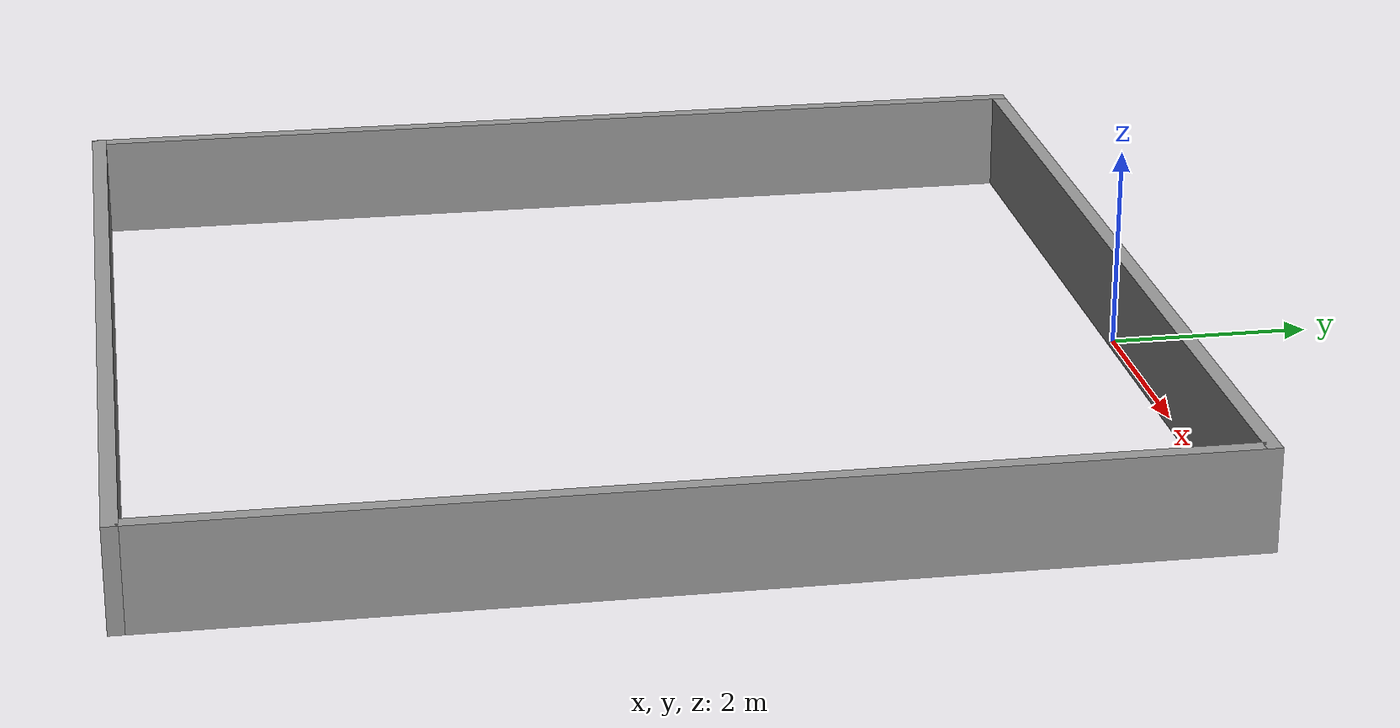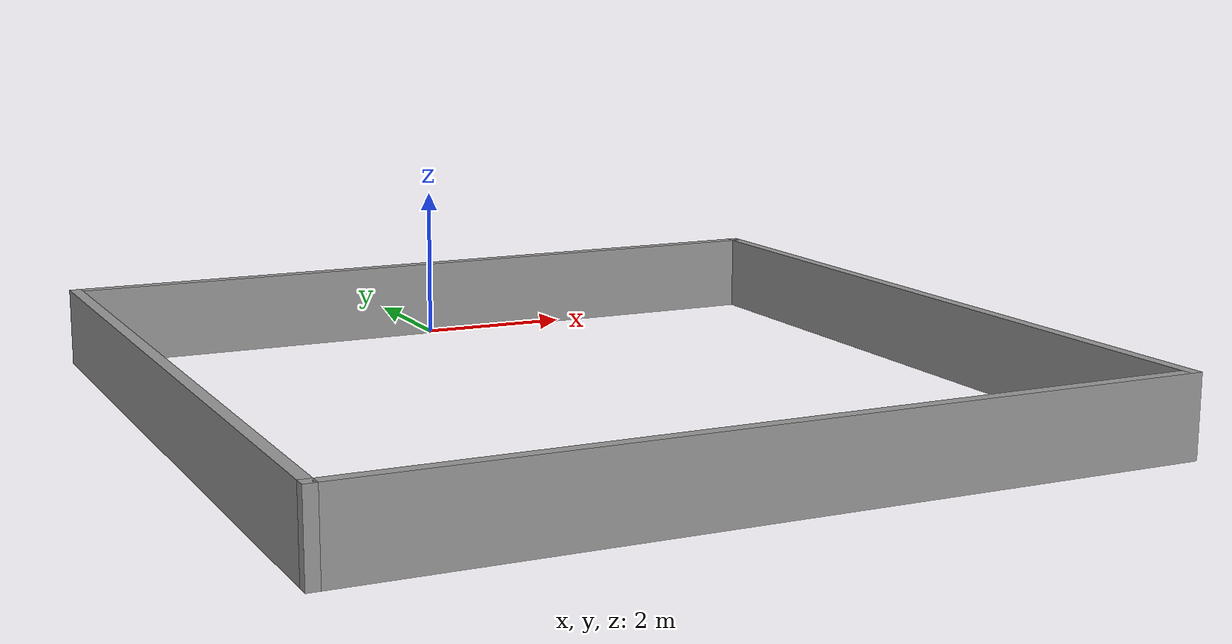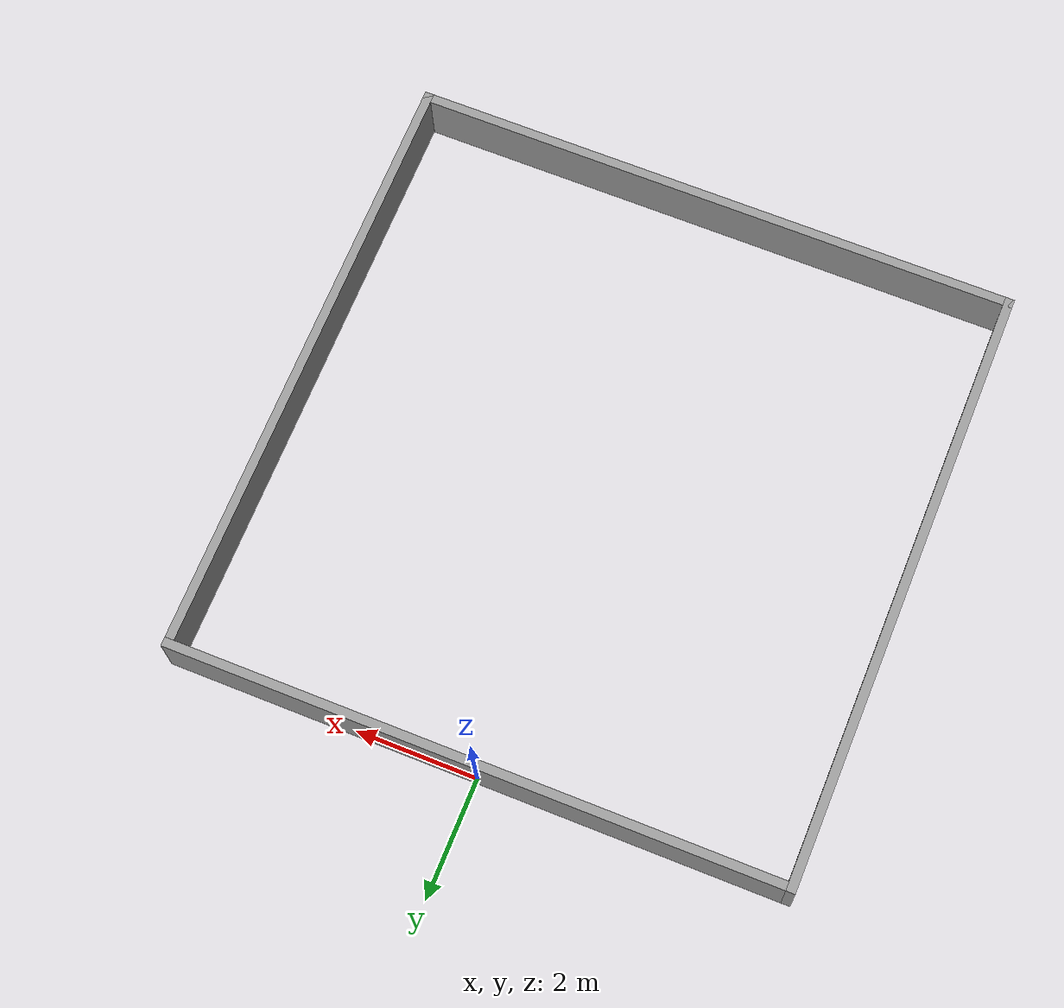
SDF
<?xml version='1.0'?>
<sdf version='1.7'>
  <model name='map3.world'>
    <pose>0 -5 0 0 -0 0</pose>
    <link name='Wall_11'>
      <collision name='Wall_11_Collision'>
        <geometry>
          <box>
            <size>10.15 0.15 1</size>
          </box>
        </geometry>
        <pose>0 0 0.5 0 -0 0</pose>
      </collision>
      <visual name='Wall_11_Visual'>
        <pose>0 0 0.5 0 -0 0</pose>
        <geometry>
          <box>
            <size>10.15 0.15 1</size>
          </box>
        </geometry>
        <material>
          <script>
            <uri>file://media/materials/scripts/gazebo.material</uri>
            <name>Gazebo/Grey</name>
          </script>
          <ambient>1 1 1 1</ambient>
        </material>
        <meta>
          <layer>0</layer>
        </meta>
      </visual>
      <pose>-5 0 0 0 -0 1.5708</pose>
    </link>
    <link name='Wall_2'>
      <collision name='Wall_2_Collision'>
        <geometry>
          <box>
            <size>10 0.15 1</size>
          </box>
        </geometry>
        <pose>0 0 0.5 0 -0 0</pose>
      </collision>
      <visual name='Wall_2_Visual'>
        <pose>0 0 0.5 0 -0 0</pose>
        <geometry>
          <box>
            <size>10 0.15 1</size>
          </box>
        </geometry>
        <material>
          <script>
            <uri>file://media/materials/scripts/gazebo.material</uri>
            <name>Gazebo/Grey</name>
          </script>
          <ambient>1 1 1 1</ambient>
        </material>
        <meta>
          <layer>0</layer>
        </meta>
      </visual>
      <pose>0.075 5 0 0 -0 0</pose>
    </link>
    <link name='Wall_4'>
      <collision name='Wall_4_Collision'>
        <geometry>
          <box>
            <size>10.15 0.15 1</size>
          </box>
        </geometry>
        <pose>0 0 0.5 0 -0 0</pose>
      </collision>
      <visual name='Wall_4_Visual'>
        <pose>0 0 0.5 0 -0 0</pose>
        <geometry>
          <box>
            <size>10.15 0.15 1</size>
          </box>
        </geometry>
        <material>
          <script>
            <uri>file://media/materials/scripts/gazebo.material</uri>
            <name>Gazebo/Grey</name>
          </script>
          <ambient>1 1 1 1</ambient>
        </material>
        <meta>
          <layer>0</layer>
        </meta>
      </visual>
      <pose>5 0 0 0 -0 -1.5708</pose>
    </link>
    <link name='Wall_9'>
      <collision name='Wall_9_Collision'>
        <geometry>
          <box>
            <size>10.15 0.15 1</size>
          </box>
        </geometry>
        <pose>0 0 0.5 0 -0 0</pose>
      </collision>
      <visual name='Wall_9_Visual'>
        <pose>0 0 0.5 0 -0 0</pose>
        <geometry>
          <box>
            <size>10.15 0.15 1</size>
          </box>
        </geometry>
        <material>
          <script>
            <uri>file://media/materials/scripts/gazebo.material</uri>
            <name>Gazebo/Grey</name>
          </script>
          <ambient>1 1 1 1</ambient>
        </material>
        <meta>
          <layer>0</layer>
        </meta>
      </visual>
      <pose>0 -5 0 0 -0 3.14159</pose>
    </link>
    <static>1</static>
  </model>
</sdf>
